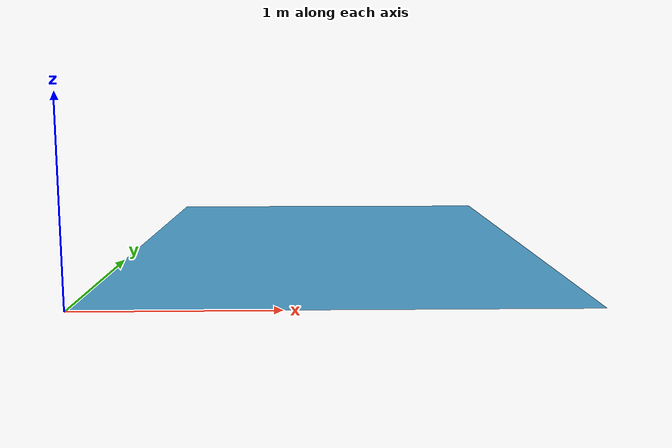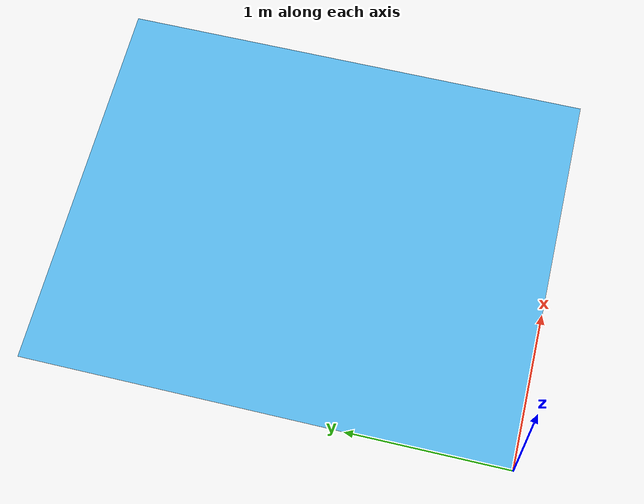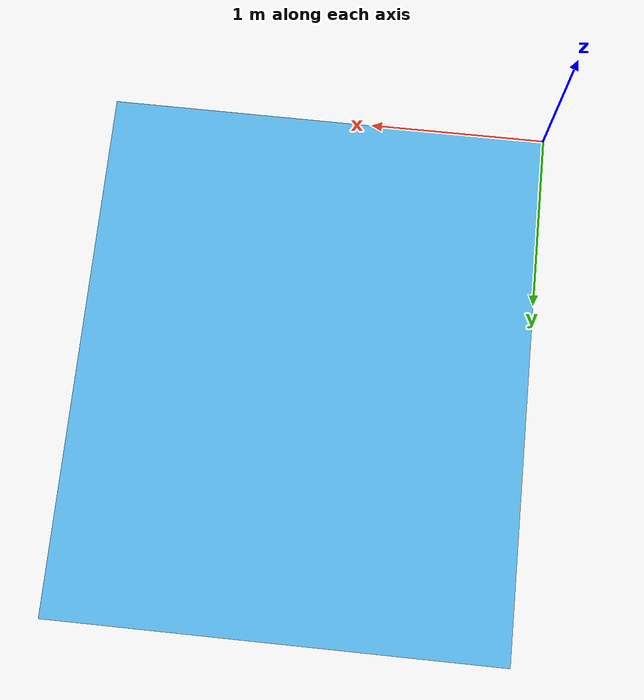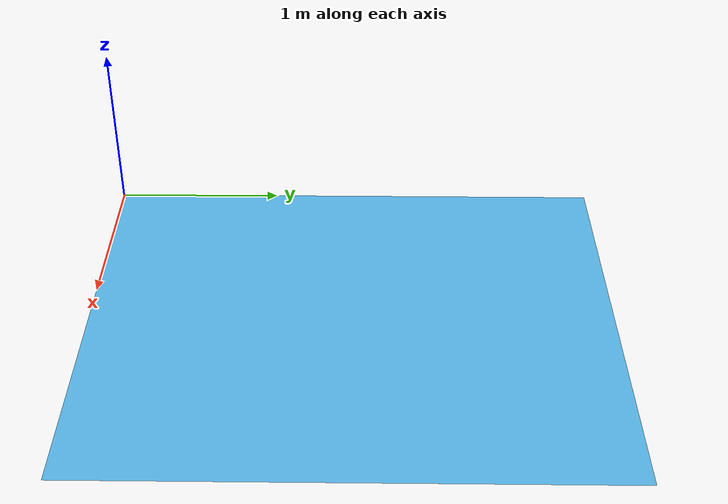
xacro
<?xml version="1.0"?>
<!-- All components of ROS-TMS project -->
<robot name="rostms" xmlns:xacro="http://ros.org/wiki/xacro">

  <!-- Import common properties -->
  <xacro:include filename="$(find rostms_description)/urdf/common_properties.urdf.xacro" />

  <!-- Used for fixing all components to 'world' frame of RViz and Gazebo 'world' -->
  <link name="world_link"/>

  <joint name="world_bsen_room_joint" type="fixed">
    <parent link="world_link"/>
    <child link="bsen_room_link"/>
    <origin xyz="0 0 0" rpy="0 0 0"/>
  </joint>

  <!-- Defines the components tags -->
  <xacro:include filename="$(find tms_ss_pot)/urdf/map.urdf.xacro" />
  <xacro:environments/>

</robot>

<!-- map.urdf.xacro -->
<!-- Environments of ROS-TMS -->
<robot name="environments" xmlns:xacro="http://ros.org/wiki/xacro">

  <!-- Import all Gazebo-customization elements, including Gazebo colors -->
  <xacro:include filename="$(find rostms_description)/urdf/environments_gazebo.urdf.xacro"/>

  <xacro:macro name="environments">

    <!--  Environment -->
    <link name="bsen_room_link">
      <visual>
        <geometry>
          <mesh filename="package://tms_ss_pot/model/map.dae"/>
        </geometry>
        <origin xyz="0 0 0.001" rpy="0 0 0"/>
      </visual>
      <collision>
        <geometry>
          <box size="15.0 7.0 0.001"/>
        </geometry>
        <origin xyz="7.5 3.5 -0.001" rpy="0 0 0"/>
      </collision>
      <inertial>
        <origin xyz="0 0 0.001" rpy="0 0 0"/>
        <mass value="100"/>
        <inertia
          ixx="1.0" ixy="0.0" ixz="0.0"
          iyy="1.0" iyz="0.0"
          izz="1.0"/>
      </inertial>
    </link>

    <xacro:environments_sim/>

  </xacro:macro>

</robot>
